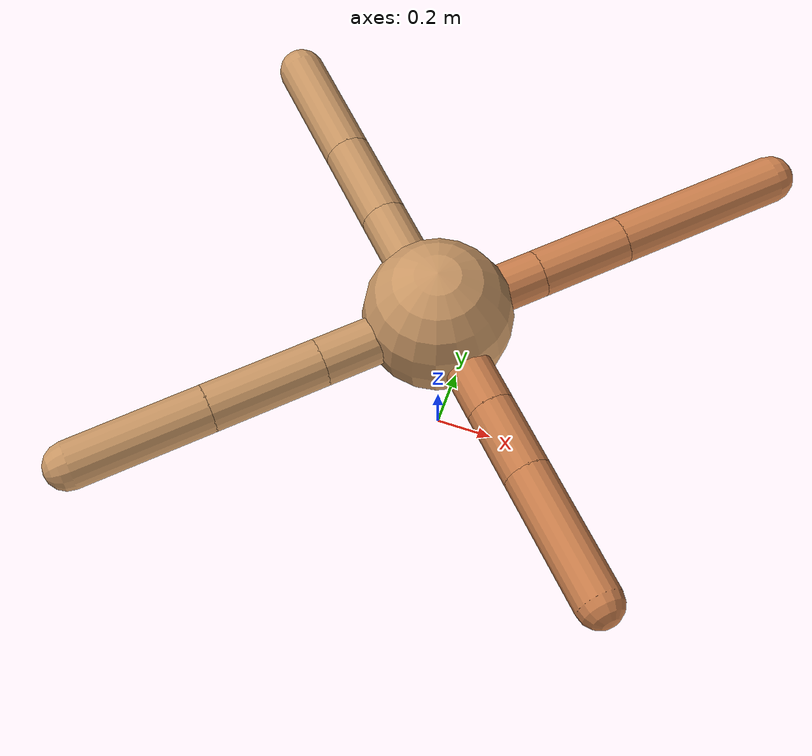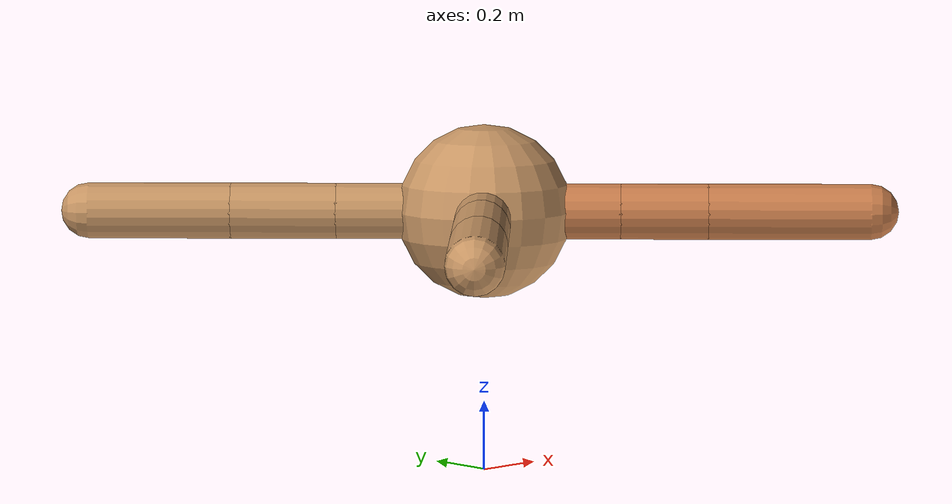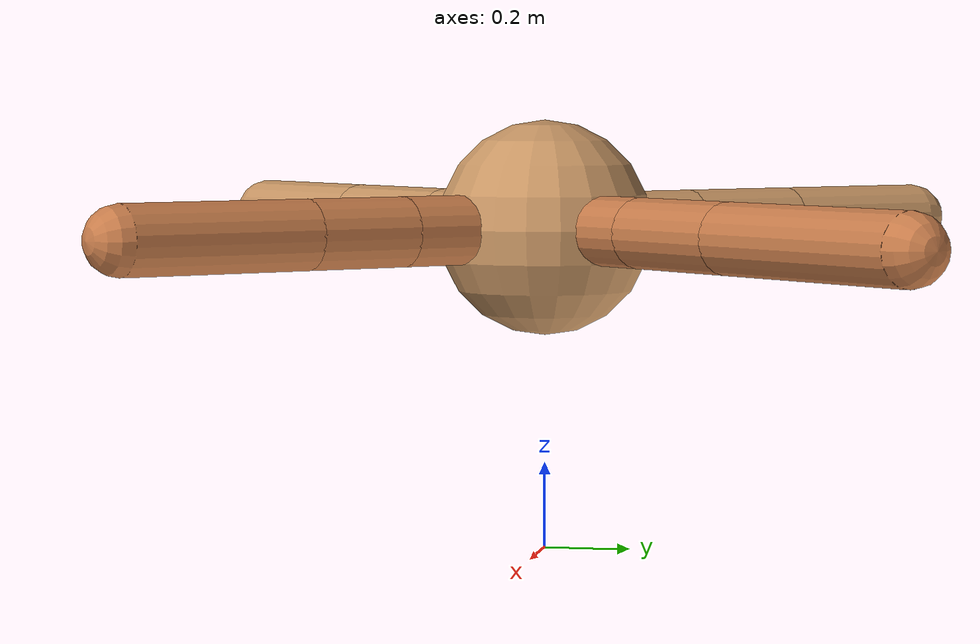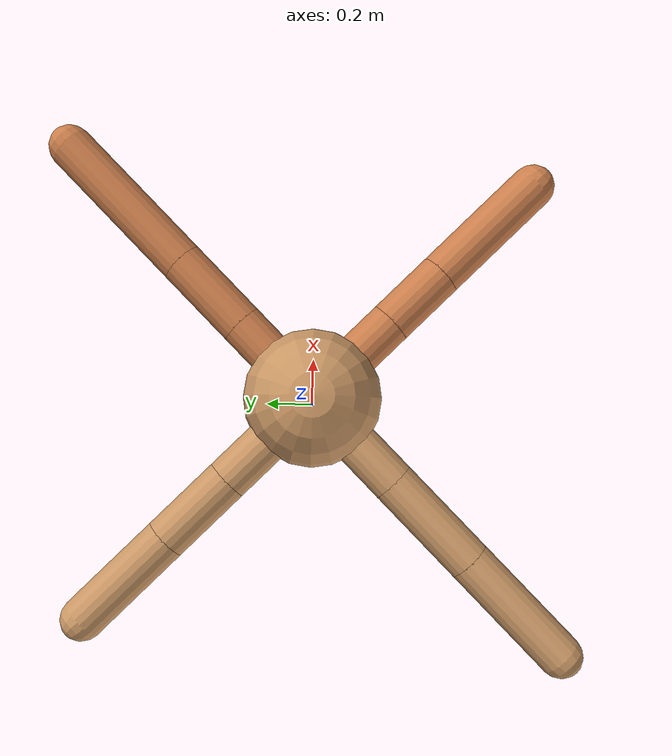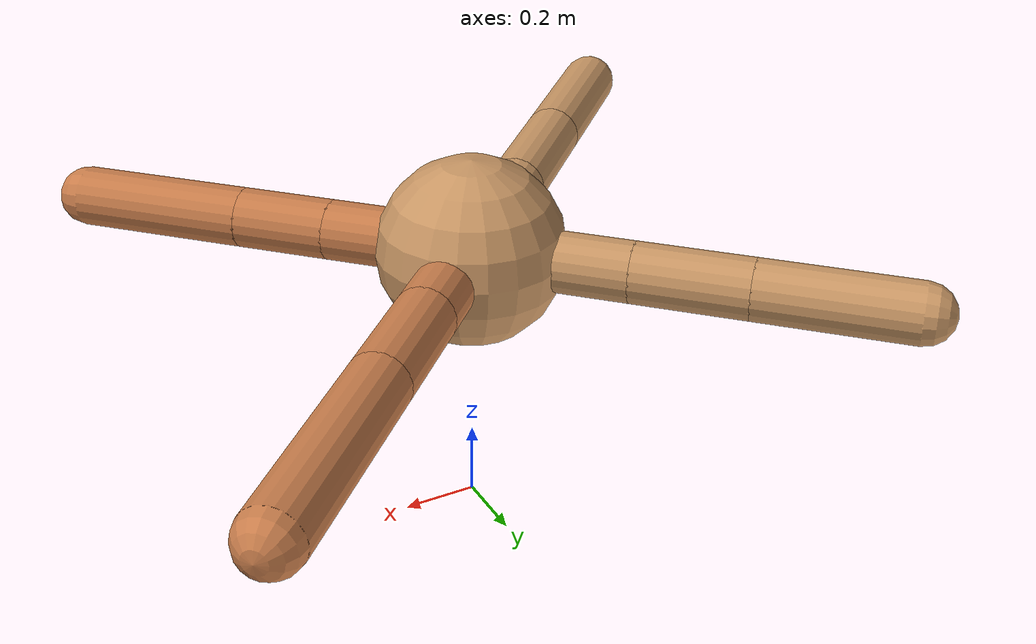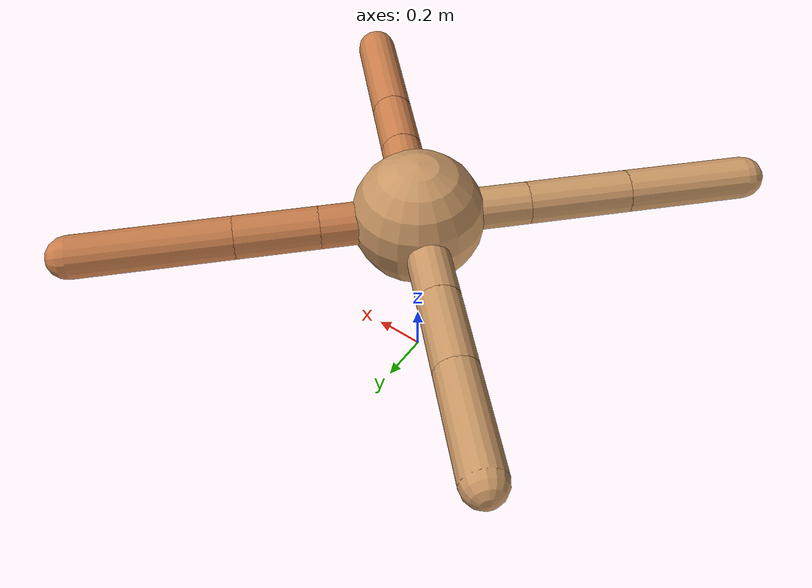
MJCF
<mujoco model="ant">
  <compiler angle="degree" coordinate="local" inertiafromgeom="true" />
  <option integrator="RK4" timestep="0.01" />
  <custom>
    <numeric data="0.0 0.0 0.55 1.0 0.0 0.0 0.0 0.0 1.0 0.0 -1.0 0.0 -1.0 0.0 1.0" name="init_qpos" />
  </custom>
  <default>
    <joint armature="1" damping="1" limited="true" />
    <geom conaffinity="0" condim="3" density="5.0" friction="1.5 0.1 0.1" margin="0.01" rgba="0.8 0.6 0.4 1" />
  </default>
  <worldbody>
    <body name="torso" pos="0 0 0.75">
      <geom name="torso_geom" pos="0 0 0" size="0.25" type="sphere" />

      <body name="front_left_leg" pos="0 0 0">
        <geom fromto="0.0 0.0 0.0 0.25992011548981847 0.25992011548981847 0.0" name="aux_1_geom" size="0.08" type="capsule" rgba=".8 .5 .3 1" />
        <body name="aux_1" pos="0.25992011548981847 0.25992011548981847 0.0">
          <joint axis="0 0 1" name="hip_1" pos="0.0 0.0 0.0" range="-40 40" type="hinge" />
          <geom fromto="0.0 0.0 0.0 0.22042609548414016 0.22042609548414016 0.0" name="left_leg_geom" size="0.08" type="capsule" rgba=".8 .5 .3 1" />
          <body pos="0.22042609548414016 0.22042609548414016 0.0" name="front_left_foot">
            <joint axis="-1 1 0" name="ankle_1" pos="0.0 0.0 0.0" range="30 100" type="hinge" />
            <geom fromto="0.0 0.0 0.0 0.41546246862613057 0.41546246862613057 0.0" name="left_ankle_geom" size="0.08" type="capsule" rgba=".8 .5 .3 1" />
          </body>
        </body>
      </body>
      <body name="front_right_leg" pos="0 0 0">
        <geom fromto="0.0 0.0 0.0 -0.29981506862866963 0.29981506862866963 0.0" name="aux_2_geom" size="0.08" type="capsule" />
        <body name="aux_2" pos="-0.29981506862866963 0.29981506862866963 0.0">
          <joint axis="0 0 1" name="hip_2" pos="0.0 0.0 0.0" range="-40 40" type="hinge" />
          <geom fromto="0.0 0.0 0.0 -0.21385703827154787 0.21385703827154787 0.0" name="right_leg_geom" size="0.08" type="capsule" />
          <body pos="-0.21385703827154787 0.21385703827154787 0.0" name="front_right_foot">
            <joint axis="1 1 0" name="ankle_2" pos="0.0 0.0 0.0" range="-100 -30" type="hinge" />
            <geom fromto="0.0 0.0 0.0 -0.28878518681694776 0.28878518681694776 0.0" name="right_ankle_geom" size="0.08" type="capsule" />
          </body>
        </body>
      </body>
      <body name="left_back_leg" pos="0 0 0">
        <geom fromto="0.0 0.0 0.0 -0.2957835711239705 -0.2957835711239705 0.0" name="aux_3_geom" size="0.08" type="capsule" />
        <body name="aux_3" pos="-0.2957835711239705 -0.2957835711239705 0.0">
          <joint axis="0 0 1" name="hip_3" pos="0.0 0.0 0.0" range="-40 40" type="hinge" />
          <geom fromto="0.0 0.0 0.0 -0.2744706649620497 -0.2744706649620497 0.0" name="back_leg_geom" size="0.08" type="capsule" />
          <body pos="-0.2744706649620497 -0.2744706649620497 0.0" name="left_back_foot">
            <joint axis="-1 1 0" name="ankle_3" pos="0.0 0.0 0.0" range="-100 -30" type="hinge" />
            <geom fromto="0.0 0.0 0.0 -0.3289568630922321 -0.3289568630922321 0.0" name="third_ankle_geom" size="0.08" type="capsule" />
          </body>
        </body>
      </body>
      <body name="right_back_leg" pos="0 0 0">
        <geom fromto="0.0 0.0 0.0 0.2758194626667156 -0.2758194626667156 0.0" name="aux_4_geom" size="0.08" type="capsule" rgba=".8 .5 .3 1" />
        <body name="aux_4" pos="0.2758194626667156 -0.2758194626667156 0.0">
          <joint axis="0 0 1" name="hip_4" pos="0.0 0.0 0.0" range="-40 40" type="hinge" />
          <geom fromto="0.0 0.0 0.0 0.17746465213361315 -0.17746465213361315 0.0" name="rightback_leg_geom" size="0.08" type="capsule" rgba=".8 .5 .3 1" />
          <body pos="0.17746465213361315 -0.17746465213361315 0.0" name="right_back_foot">
            <joint axis="1 1 0" name="ankle_4" pos="0.0 0.0 0.0" range="30 100" type="hinge" />
            <geom fromto="0.0 0.0 0.0 0.32914991920114367 -0.32914991920114367 0.0" name="fourth_ankle_geom" size="0.08" type="capsule" rgba=".8 .5 .3 1" />
          </body>
        </body>
      </body>
    </body>
  </worldbody>
  <actuator>
    <motor ctrllimited="true" ctrlrange="-1.0 1.0" joint="hip_4" gear="150" />
    <motor ctrllimited="true" ctrlrange="-1.0 1.0" joint="ankle_4" gear="150" />
    <motor ctrllimited="true" ctrlrange="-1.0 1.0" joint="hip_1" gear="150" />
    <motor ctrllimited="true" ctrlrange="-1.0 1.0" joint="ankle_1" gear="150" />
    <motor ctrllimited="true" ctrlrange="-1.0 1.0" joint="hip_2" gear="150" />
    <motor ctrllimited="true" ctrlrange="-1.0 1.0" joint="ankle_2" gear="150" />
    <motor ctrllimited="true" ctrlrange="-1.0 1.0" joint="hip_3" gear="150" />
    <motor ctrllimited="true" ctrlrange="-1.0 1.0" joint="ankle_3" gear="150" />
  </actuator>
</mujoco>
